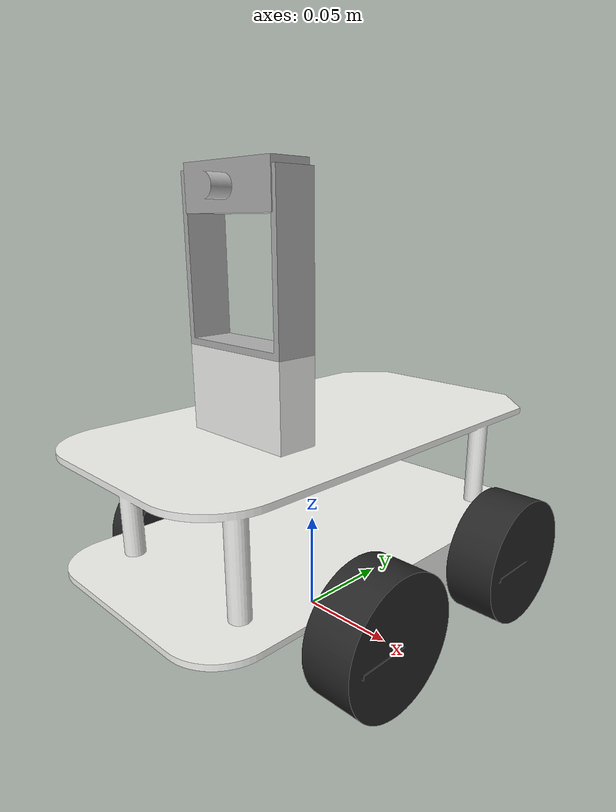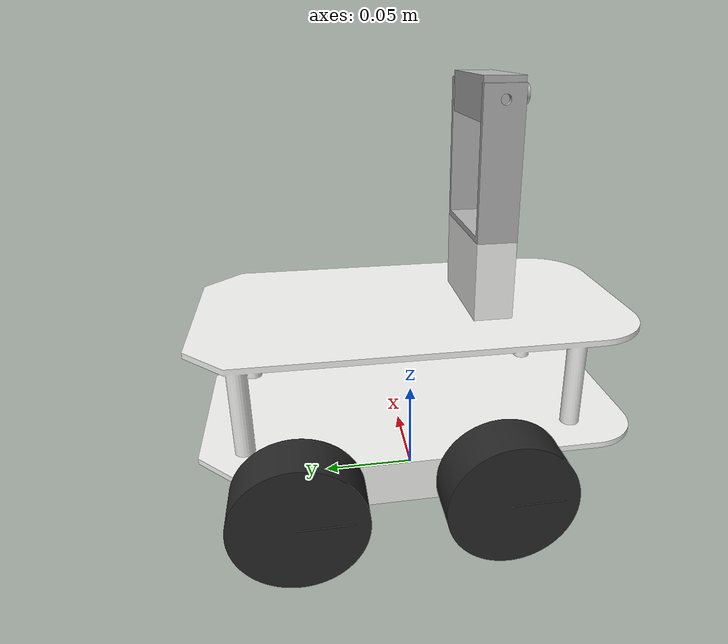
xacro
<?xml version="1.0" ?>
<robot name="kmu_robot" xmlns:xacro="http://www.ros.org/wiki/xacro">

<xacro:include filename="$(find kmu_robot_description)/urdf/materials.xacro" />
<xacro:include filename="$(find kmu_robot_description)/urdf/kmu_robot.trans" />
<link name="base_link">
  <inertial>
    <origin xyz="-6.049626777184005e-07 -0.0008649326352775076 0.068211173822503" rpy="0 0 0"/>
    <mass value="0.3478080978702228"/>
    <inertia ixx="0.00152" iyy="0.001009" izz="0.00162" ixy="-0.0" iyz="0.00016" ixz="0.0"/>
  </inertial>
  <visual>
    <origin xyz="0 0 0" rpy="0 0 0"/>
    <geometry>
      <mesh filename="package://kmu_robot_description/meshes/base_link.stl" scale="0.001 0.001 0.001"/>
    </geometry>
    <material name="abs_white"/>
  </visual>
  <collision>
    <origin xyz="0 0 0" rpy="0 0 0"/>
    <geometry>
      <mesh filename="package://kmu_robot_description/meshes/base_link.stl" scale="0.001 0.001 0.001"/>
    </geometry>
  </collision>
</link>

<link name="right_down_vel_1">
  <inertial>
    <origin xyz="-0.01250807645275244 -7.520281169390297e-06 -1.4895439048867587e-10" rpy="0 0 0"/>
    <mass value="0.07719860417509514"/>
    <inertia ixx="4.1e-05" iyy="2.4e-05" izz="2.4e-05" ixy="-0.0" iyz="0.0" ixz="0.0"/>
  </inertial>
  <visual>
    <origin xyz="0.0625 -0.065 -0.0325" rpy="0 0 0"/>
    <geometry>
      <mesh filename="package://kmu_robot_description/meshes/right_down_vel_1.stl" scale="0.001 0.001 0.001"/>
    </geometry>
    <material name="rubber_soft"/>
  </visual>
  <collision>
    <origin xyz="0.0625 -0.065 -0.0325" rpy="0 0 0"/>
    <geometry>
      <mesh filename="package://kmu_robot_description/meshes/right_down_vel_1.stl" scale="0.001 0.001 0.001"/>
    </geometry>
  </collision>
</link>

<link name="left_down_vel_1">
  <inertial>
    <origin xyz="0.012508076450968186 -7.52027114479803e-06 -1.5037539963236313e-10" rpy="0 0 0"/>
    <mass value="0.07719860405425265"/>
    <inertia ixx="4.1e-05" iyy="2.4e-05" izz="2.4e-05" ixy="0.0" iyz="-0.0" ixz="-0.0"/>
  </inertial>
  <visual>
    <origin xyz="-0.0625 -0.065 -0.0325" rpy="0 0 0"/>
    <geometry>
      <mesh filename="package://kmu_robot_description/meshes/left_down_vel_1.stl" scale="0.001 0.001 0.001"/>
    </geometry>
    <material name="rubber_soft"/>
  </visual>
  <collision>
    <origin xyz="-0.0625 -0.065 -0.0325" rpy="0 0 0"/>
    <geometry>
      <mesh filename="package://kmu_robot_description/meshes/left_down_vel_1.stl" scale="0.001 0.001 0.001"/>
    </geometry>
  </collision>
</link>

<link name="right_up_vel_1">
  <inertial>
    <origin xyz="-0.012508076453554132 -7.521771799266774e-06 -1.4901610501105722e-10" rpy="0 0 0"/>
    <mass value="0.07719860417985885"/>
    <inertia ixx="4.1e-05" iyy="2.4e-05" izz="2.4e-05" ixy="-0.0" iyz="-0.0" ixz="-0.0"/>
  </inertial>
  <visual>
    <origin xyz="0.0625 0.035 -0.0325" rpy="0 0 0"/>
    <geometry>
      <mesh filename="package://kmu_robot_description/meshes/right_up_vel_1.stl" scale="0.001 0.001 0.001"/>
    </geometry>
    <material name="rubber_soft"/>
  </visual>
  <collision>
    <origin xyz="0.0625 0.035 -0.0325" rpy="0 0 0"/>
    <geometry>
      <mesh filename="package://kmu_robot_description/meshes/right_up_vel_1.stl" scale="0.001 0.001 0.001"/>
    </geometry>
  </collision>
</link>

<link name="left_up_vel_1">
  <inertial>
    <origin xyz="0.012508076450968172 -7.521761260897986e-06 -1.5037539269346922e-10" rpy="0 0 0"/>
    <mass value="0.0771986040542526"/>
    <inertia ixx="4.1e-05" iyy="2.4e-05" izz="2.4e-05" ixy="0.0" iyz="-0.0" ixz="-0.0"/>
  </inertial>
  <visual>
    <origin xyz="-0.0625 0.035 -0.0325" rpy="0 0 0"/>
    <geometry>
      <mesh filename="package://kmu_robot_description/meshes/left_up_vel_1.stl" scale="0.001 0.001 0.001"/>
    </geometry>
    <material name="rubber_soft"/>
  </visual>
  <collision>
    <origin xyz="-0.0625 0.035 -0.0325" rpy="0 0 0"/>
    <geometry>
      <mesh filename="package://kmu_robot_description/meshes/left_up_vel_1.stl" scale="0.001 0.001 0.001"/>
    </geometry>
  </collision>
</link>

<link name="camera_fix_1">
  <inertial>
    <origin xyz="0.00014058916329668788 2.0470286841781093e-06 0.02685786146455227" rpy="0 0 0"/>
    <mass value="0.015404012727691301"/>
    <inertia ixx="9e-06" iyy="1.9e-05" izz="1.1e-05" ixy="0.0" iyz="-0.0" ixz="-0.0"/>
  </inertial>
  <visual>
    <origin xyz="-0.0 0.037512 -0.1435" rpy="0 0 0"/>
    <geometry>
      <mesh filename="package://kmu_robot_description/meshes/camera_fix_1.stl" scale="0.001 0.001 0.001"/>
    </geometry>
    <material name="plastic_glossy_grey"/>
  </visual>
  <collision>
    <origin xyz="-0.0 0.037512 -0.1435" rpy="0 0 0"/>
    <geometry>
      <mesh filename="package://kmu_robot_description/meshes/camera_fix_1.stl" scale="0.001 0.001 0.001"/>
    </geometry>
  </collision>
</link>

<link name="camera_1">
  <inertial>
    <origin xyz="0.02748276531839804 -0.0005174604638783845 2.4884939386904392e-09" rpy="0 0 0"/>
    <mass value="0.029393163630782666"/>
    <inertia ixx="2e-06" iyy="8e-06" izz="8e-06" ixy="-0.0" iyz="-0.0" ixz="-0.0"/>
  </inertial>
  <visual>
    <origin xyz="0.027 0.038012 -0.2095" rpy="0 0 0"/>
    <geometry>
      <mesh filename="package://kmu_robot_description/meshes/camera_1.stl" scale="0.001 0.001 0.001"/>
    </geometry>
    <material name="plastic_glossy_grey"/>
  </visual>
  <collision>
    <origin xyz="0.027 0.038012 -0.2095" rpy="0 0 0"/>
    <geometry>
      <mesh filename="package://kmu_robot_description/meshes/camera_1.stl" scale="0.001 0.001 0.001"/>
    </geometry>
  </collision>
</link>

<joint name="Revolute 8" type="continuous">
  <origin xyz="-0.0625 0.065 0.0325" rpy="0 0 0"/>
  <parent link="base_link"/>
  <child link="right_down_vel_1"/>
  <axis xyz="-1.0 0.0 0.0"/>
</joint>

<joint name="Revolute 9" type="continuous">
  <origin xyz="0.0625 0.065 0.0325" rpy="0 0 0"/>
  <parent link="base_link"/>
  <child link="left_down_vel_1"/>
  <axis xyz="-1.0 0.0 0.0"/>
</joint>

<joint name="Revolute 10" type="continuous">
  <origin xyz="-0.0625 -0.035 0.0325" rpy="0 0 0"/>
  <parent link="base_link"/>
  <child link="right_up_vel_1"/>
  <axis xyz="1.0 0.0 0.0"/>
</joint>

<joint name="Revolute 11" type="continuous">
  <origin xyz="0.0625 -0.035 0.0325" rpy="0 0 0"/>
  <parent link="base_link"/>
  <child link="left_up_vel_1"/>
  <axis xyz="-1.0 0.0 0.0"/>
</joint>

<joint name="Revolute 12" type="revolute">
  <origin xyz="0.0 -0.037512 0.1435" rpy="0 0 0"/>
  <parent link="base_link"/>
  <child link="camera_fix_1"/>
  <axis xyz="0.0 0.0 1.0"/>
  <limit upper="1.570796" lower="-1.570796" effort="100" velocity="100"/>
</joint>

<joint name="Revolute 13" type="revolute">
  <origin xyz="-0.027 -0.0005 0.066" rpy="0 0 0"/>
  <parent link="camera_fix_1"/>
  <child link="camera_1"/>
  <axis xyz="-1.0 0.0 0.0"/>
  <limit upper="1.570796" lower="-0.785398" effort="100" velocity="100"/>
</joint>

</robot>

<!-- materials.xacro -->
<robot name="kmu_robot" xmlns:xacro="http://www.ros.org/wiki/xacro" >

<material name="silver_default">
  <color rgba="0.700 0.700 0.700 1.000"/>
</material>
<material name="abs_white">
  <color rgba="0.9647058823529412 0.9647058823529412 0.9529411764705882 1.0"/>
</material>
<material name="rubber_soft">
  <color rgba="0.15294117647058825 0.15294117647058825 0.15294117647058825 1.0"/>
</material>
<material name="plastic_glossy_grey">
  <color rgba="0.7019607843137254 0.7019607843137254 0.7019607843137254 1.0"/>
</material>

</robot>
